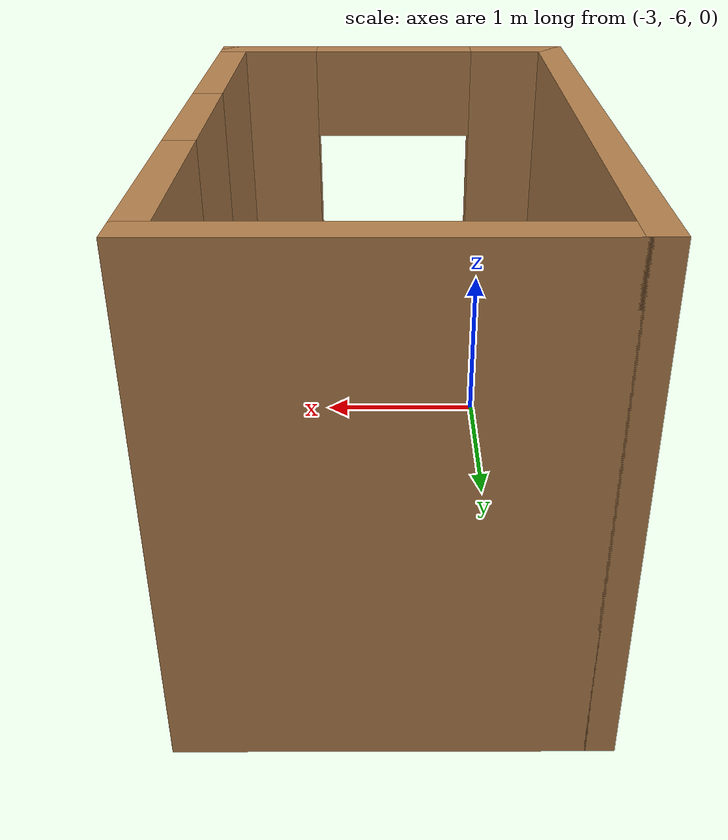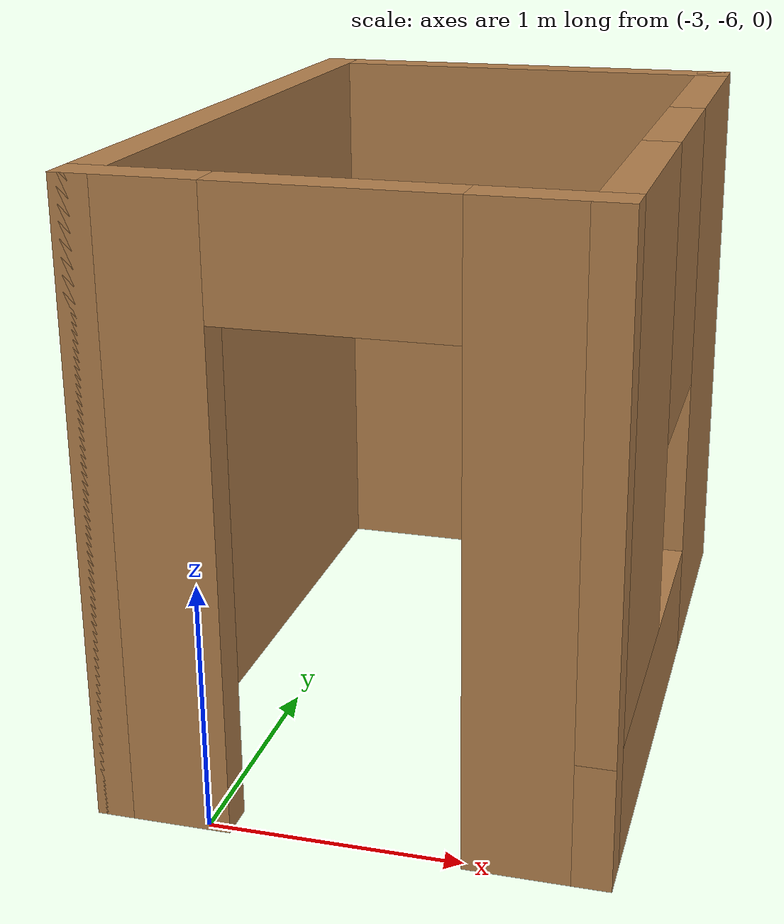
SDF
<?xml version='1.0'?>
<sdf version='1.7'>
  <model name='test_world'>
    <pose>-1.7225 -3.0175 0 0 -0 0</pose>
    <link name='Wall_0'>
      <collision name='Wall_0_Collision'>
        <geometry>
          <box>
            <size>3 0.15 2.5</size>
          </box>
        </geometry>
        <pose>0 0 1.25 0 -0 0</pose>
      </collision>
      <visual name='Wall_0_Visual'>
        <pose>0 0 1.25 0 -0 0</pose>
        <geometry>
          <box>
            <size>3 0.15 2.5</size>
          </box>
        </geometry>
        <material>
          <script>
            <uri>file://media/materials/scripts/gazebo.material</uri>
            <name>Gazebo/Wood</name>
          </script>
          <ambient>1 1 1 1</ambient>
        </material>
        <meta>
          <layer>0</layer>
        </meta>
      </visual>
      <pose>-1.6475 -1.5175 0 0 -0 -1.5708</pose>
    </link>
    <link name='Wall_1'>
      <pose>-0.7225 -2.9425 0 0 -0 0</pose>
      <visual name='Wall_1_Visual_0'>
        <pose>-0.729034 0 1.25 0 -0 0</pose>
        <geometry>
          <box>
            <size>0.541932 0.15 2.5</size>
          </box>
        </geometry>
        <material>
          <script>
            <uri>file://media/materials/scripts/gazebo.material</uri>
            <name>Gazebo/Wood</name>
          </script>
          <ambient>1 1 1 1</ambient>
        </material>
        <meta>
          <layer>0</layer>
        </meta>
      </visual>
      <collision name='Wall_1_Collision_0'>
        <geometry>
          <box>
            <size>0.541932 0.15 2.5</size>
          </box>
        </geometry>
        <pose>-0.729034 0 1.25 0 -0 0</pose>
      </collision>
      <visual name='Wall_1_Visual_1'>
        <pose>0.720966 0 1.25 0 -0 0</pose>
        <geometry>
          <box>
            <size>0.558068 0.15 2.5</size>
          </box>
        </geometry>
        <material>
          <script>
            <uri>file://media/materials/scripts/gazebo.material</uri>
            <name>Gazebo/Wood</name>
          </script>
          <ambient>1 1 1 1</ambient>
        </material>
        <meta>
          <layer>0</layer>
        </meta>
      </visual>
      <collision name='Wall_1_Collision_1'>
        <geometry>
          <box>
            <size>0.558068 0.15 2.5</size>
          </box>
        </geometry>
        <pose>0.720966 0 1.25 0 -0 0</pose>
      </collision>
      <visual name='Wall_1_Visual_2'>
        <pose>-0.008068 0 2.25 0 -0 0</pose>
        <geometry>
          <box>
            <size>0.9 0.15 0.5</size>
          </box>
        </geometry>
        <material>
          <script>
            <uri>file://media/materials/scripts/gazebo.material</uri>
            <name>Gazebo/Wood</name>
          </script>
          <ambient>1 1 1 1</ambient>
        </material>
        <meta>
          <layer>0</layer>
        </meta>
      </visual>
      <collision name='Wall_1_Collision_2'>
        <geometry>
          <box>
            <size>0.9 0.15 0.5</size>
          </box>
        </geometry>
        <pose>-0.008068 0 2.25 0 -0 0</pose>
      </collision>
    </link>
    <link name='Wall_7'>
      <collision name='Wall_7_Collision'>
        <geometry>
          <box>
            <size>2 0.15 2.5</size>
          </box>
        </geometry>
        <pose>0 0 1.25 0 -0 0</pose>
      </collision>
      <visual name='Wall_7_Visual'>
        <pose>0 0 1.25 0 -0 0</pose>
        <geometry>
          <box>
            <size>2 0.15 2.5</size>
          </box>
        </geometry>
        <material>
          <script>
            <uri>file://media/materials/scripts/gazebo.material</uri>
            <name>Gazebo/Wood</name>
          </script>
          <ambient>1 1 1 1</ambient>
        </material>
        <meta>
          <layer>0</layer>
        </meta>
      </visual>
      <pose>-0.7225 -0.0925 0 0 -0 0</pose>
    </link>
    <link name='Wall_8'>
      <pose>0.2025 -1.5175 0 0 -0 -1.5708</pose>
      <visual name='Wall_8_Visual_0'>
        <pose>-0.945979 0 1.25 0 -0 0</pose>
        <geometry>
          <box>
            <size>1.10804 0.15 2.5</size>
          </box>
        </geometry>
        <material>
          <script>
            <uri>file://media/materials/scripts/gazebo.material</uri>
            <name>Gazebo/Wood</name>
          </script>
          <ambient>1 1 1 1</ambient>
        </material>
        <meta>
          <layer>0</layer>
        </meta>
      </visual>
      <collision name='Wall_8_Collision_0'>
        <geometry>
          <box>
            <size>1.10804 0.15 2.5</size>
          </box>
        </geometry>
        <pose>-0.945979 0 1.25 0 -0 0</pose>
      </collision>
      <visual name='Wall_8_Visual_1'>
        <pose>0.554021 0 0.25 0 -0 0</pose>
        <geometry>
          <box>
            <size>1.89196 0.15 0.5</size>
          </box>
        </geometry>
        <material>
          <script>
            <uri>file://media/materials/scripts/gazebo.material</uri>
            <name>Gazebo/Wood</name>
          </script>
          <ambient>1 1 1 1</ambient>
        </material>
        <meta>
          <layer>0</layer>
        </meta>
      </visual>
      <collision name='Wall_8_Collision_1'>
        <geometry>
          <box>
            <size>1.89196 0.15 0.5</size>
          </box>
        </geometry>
        <pose>0.554021 0 0.25 0 -0 0</pose>
      </collision>
      <visual name='Wall_8_Visual_2'>
        <pose>0.954021 0 1.5 0 -0 0</pose>
        <geometry>
          <box>
            <size>1.09196 0.15 2</size>
          </box>
        </geometry>
        <material>
          <script>
            <uri>file://media/materials/scripts/gazebo.material</uri>
            <name>Gazebo/Wood</name>
          </script>
          <ambient>1 1 1 1</ambient>
        </material>
        <meta>
          <layer>0</layer>
        </meta>
      </visual>
      <collision name='Wall_8_Collision_2'>
        <geometry>
          <box>
            <size>1.09196 0.15 2</size>
          </box>
        </geometry>
        <pose>0.954021 0 1.5 0 -0 0</pose>
      </collision>
      <visual name='Wall_8_Visual_3'>
        <pose>0.008042 0 1.9 0 -0 0</pose>
        <geometry>
          <box>
            <size>0.8 0.15 1.2</size>
          </box>
        </geometry>
        <material>
          <script>
            <uri>file://media/materials/scripts/gazebo.material</uri>
            <name>Gazebo/Wood</name>
          </script>
          <ambient>1 1 1 1</ambient>
        </material>
        <meta>
          <layer>0</layer>
        </meta>
      </visual>
      <collision name='Wall_8_Collision_3'>
        <geometry>
          <box>
            <size>0.8 0.15 1.2</size>
          </box>
        </geometry>
        <pose>0.008042 0 1.9 0 -0 0</pose>
      </collision>
    </link>
    <static>1</static>
  </model>
</sdf>
